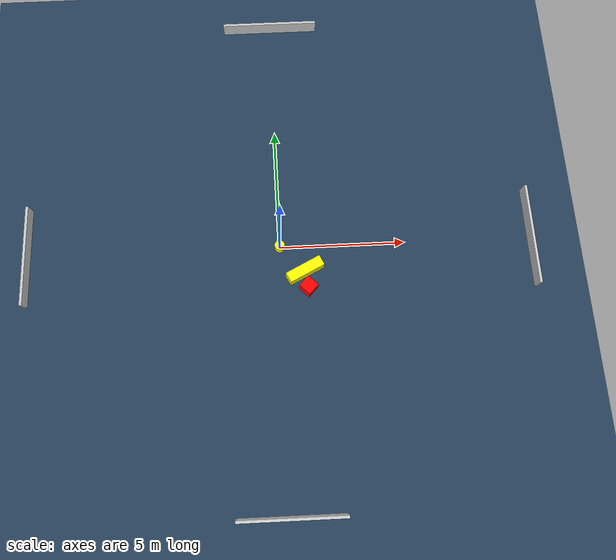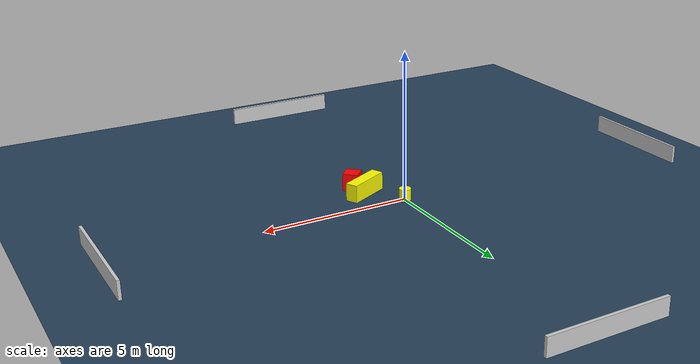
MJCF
<?xml version="1.0" ?>
<mujoco model="generated_environment">
  <option timestep="0.01" integrator="RK4" cone="elliptic"/>
  <default>
    <geom density="1"/>
  </default>
  <asset>
    <texture builtin="gradient" height="3072" name="skybox" rgb1="0.3 0.5 0.7" rgb2="0 0 0" type="skybox" width="512"/>
    <texture builtin="checker" height="300" name="groundplane" rgb1="0.2 0.3 0.4" rgb2="0.1 0.2 0.3" type="2d" width="300"/>
    <material name="groundplane" reflectance="0.2" texrepeat="5 5" texture="groundplane"/>
  </asset>
  <worldbody>
    <light dir="0 0 -1" directional="true" pos="0 0 1.5"/>
    <geom condim="3" friction="0.5 0.005 0.001" material="groundplane" name="floor" pos="0 0 0" size="0 0 0.05" type="plane"/>
    <body name="walls">
      <geom name="wall_1" condim="4" pos="-10.0 0.0 0.3" rgba="0.800000011920929 0.800000011920929 0.800000011920929 1.0" size="0.05 2.0 0.3" type="box"/>
      <geom name="wall_2" condim="4" pos="10.0 0.0 0.3" rgba="0.800000011920929 0.800000011920929 0.800000011920929 1.0" size="0.05 2.0 0.3" type="box"/>
      <geom name="wall_3" condim="4" pos="0.0 -10.0 0.3" rgba="0.800000011920929 0.800000011920929 0.800000011920929 1.0" size="2.0 0.05 0.3" type="box"/>
      <geom name="wall_4" condim="4" pos="0.0 10.0 0.3" rgba="0.800000011920929 0.800000011920929 0.800000011920929 1.0" size="2.0 0.05 0.3" type="box"/>
    </body>
    <body name="robot">
      <joint name="joint_x" type="slide" pos="0 0 0" axis="1 0 0"/>
      <joint name="joint_y" type="slide" pos="0 0 0" axis="0 1 0"/>
      <geom name="robot" type="cylinder" pos="0.0 0.0 0.2" size="0.2 0.2 0.0" mass="5.0" friction="1.0 0.005 0.0001" condim="4" rgba="1.0 1.0 0.0 1.0"/>
    </body>
    <body name="obstacle_1_movable">
      <geom name="obstacle_1_movable" condim="4" pos="0.9422217702471595 -1.0465325585986411 0.3" euler="0 0 296.3166860095297" friction="0.0 0.005 0.001" rgba="1.0 1.0 0.0 1.0" size="0.20940261383161446 0.7430728618095246 0.3" type="box" mass="0.1"/>
      <joint type="free"/>
    </body>
    <body name="obstacle_2_static">
      <geom name="obstacle_2_static" condim="4" pos="1.0536497897743138 -1.6983517151102518 0.3" euler="0 0 45.62854009108733" friction="0.0 0.005 0.001" rgba="1.0 0.0 0.0 1.0" size="0.25912043807096463 0.26387468813125586 0.3" type="box"/>
    </body>
  </worldbody>
  <actuator>
    <motor name="actuator_x" joint="joint_x" gear="1" ctrlrange="-1 1"/>
    <motor name="actuator_y" joint="joint_y" gear="1" ctrlrange="-1 1"/>
  </actuator>
</mujoco>
